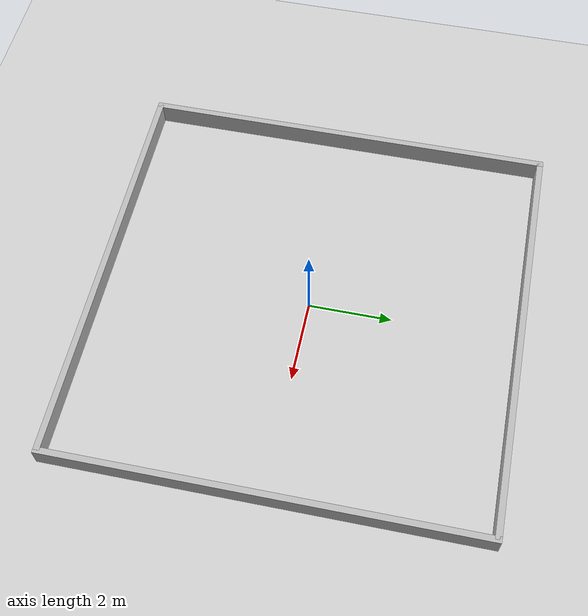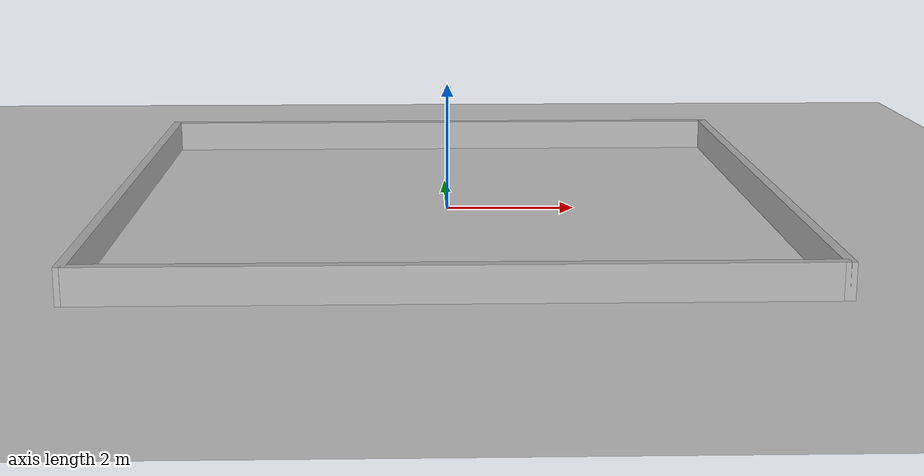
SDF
<sdf version="1.4">
 <world name="default">
  <include><uri>model://ground_plane</uri></include>
  <include><uri>model://sun</uri></include>
  <model name="room">
   <link name="Wall_1">
    <collision name="Wall_1_Collision"><geometry><box><size>10 0.15 1</size></box></geometry></collision>
    <visual name="Wall_1_Visual"><geometry><box><size>10 0.15 1</size></box></geometry></visual>
    <pose>0 5 0 0 -0 0</pose>
   </link>
   <link name="Wall_2">
    <collision name="Wall_2_Collision"><geometry><box><size>10 0.15 1</size></box></geometry></collision>
    <visual name="Wall_2_Visual"><geometry><box><size>10 0.15 1</size></box></geometry></visual>
    <pose>0 -5 0 0 -0 0</pose>
   </link>
   <link name="Wall_3">
    <collision name="Wall_3_Collision"><geometry><box><size>10.15 0.15 1</size></box></geometry></collision>
    <visual name="Wall_3_Visual"><geometry><box><size>10.15 0.15 1</size></box></geometry></visual>
    <pose>5 0 0 0 -0 1.571</pose>
   </link>
   <link name="Wall_4">
    <collision name="Wall_4_Collision"><geometry><box><size>10.15 0.15 1</size></box></geometry></collision>
    <visual name="Wall_4_Visual"><geometry><box><size>10.15 0.15 1</size></box></geometry></visual>
    <pose>-5 0 0 0 -0 1.571</pose>
   </link>
   <static>1</static>
  </model>
 </world>
</sdf>
